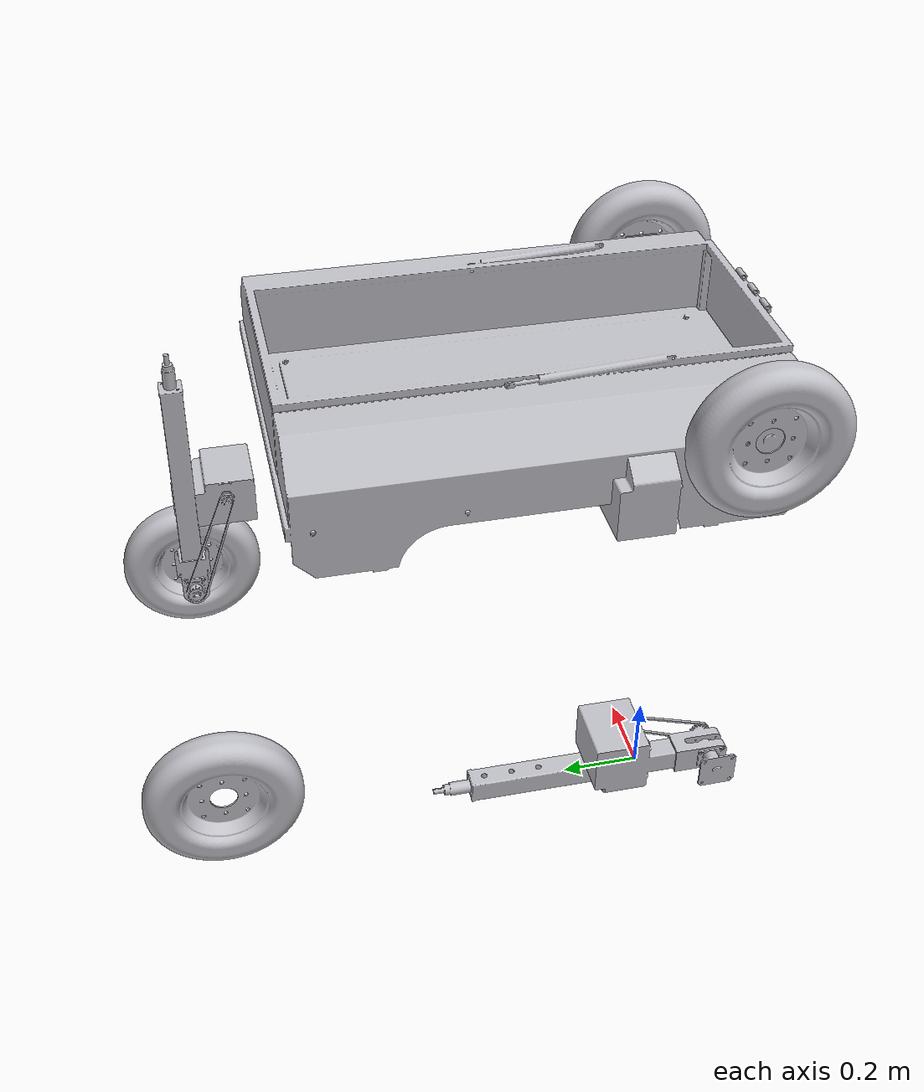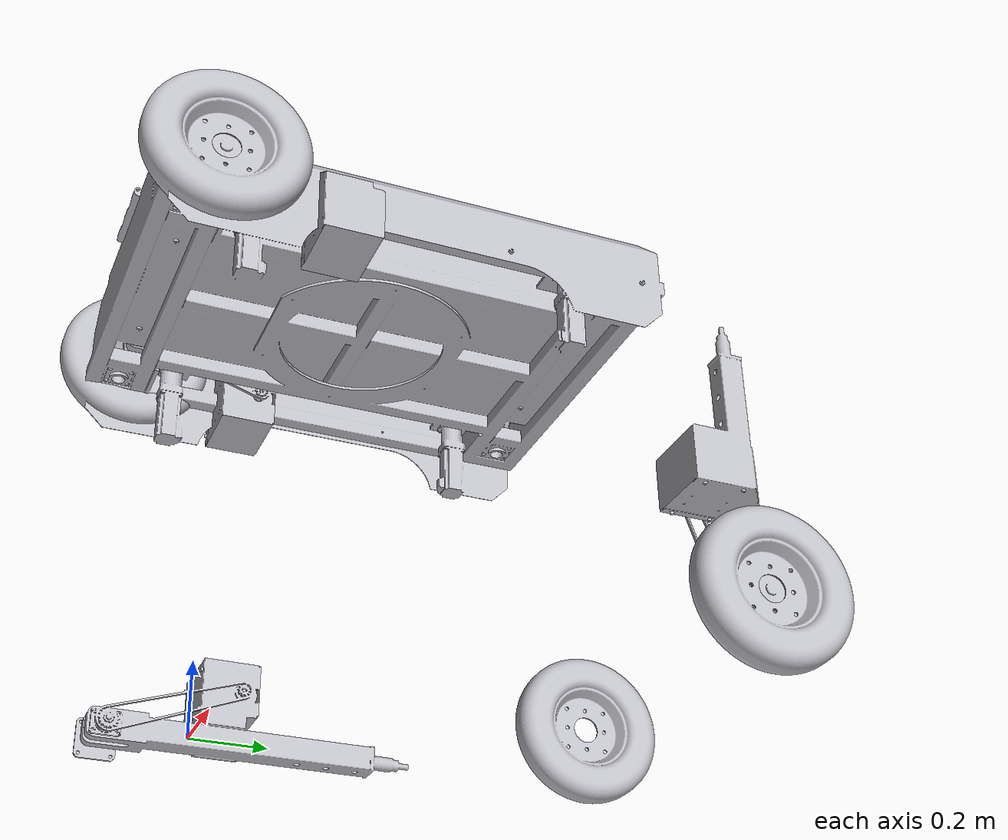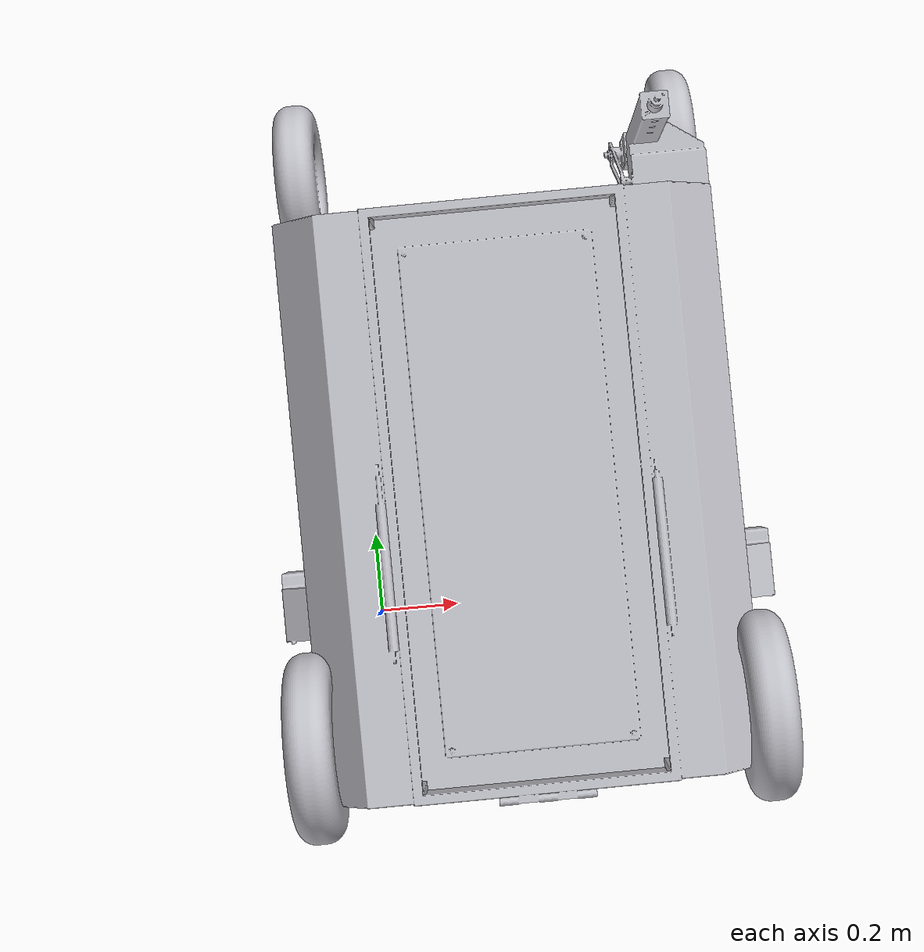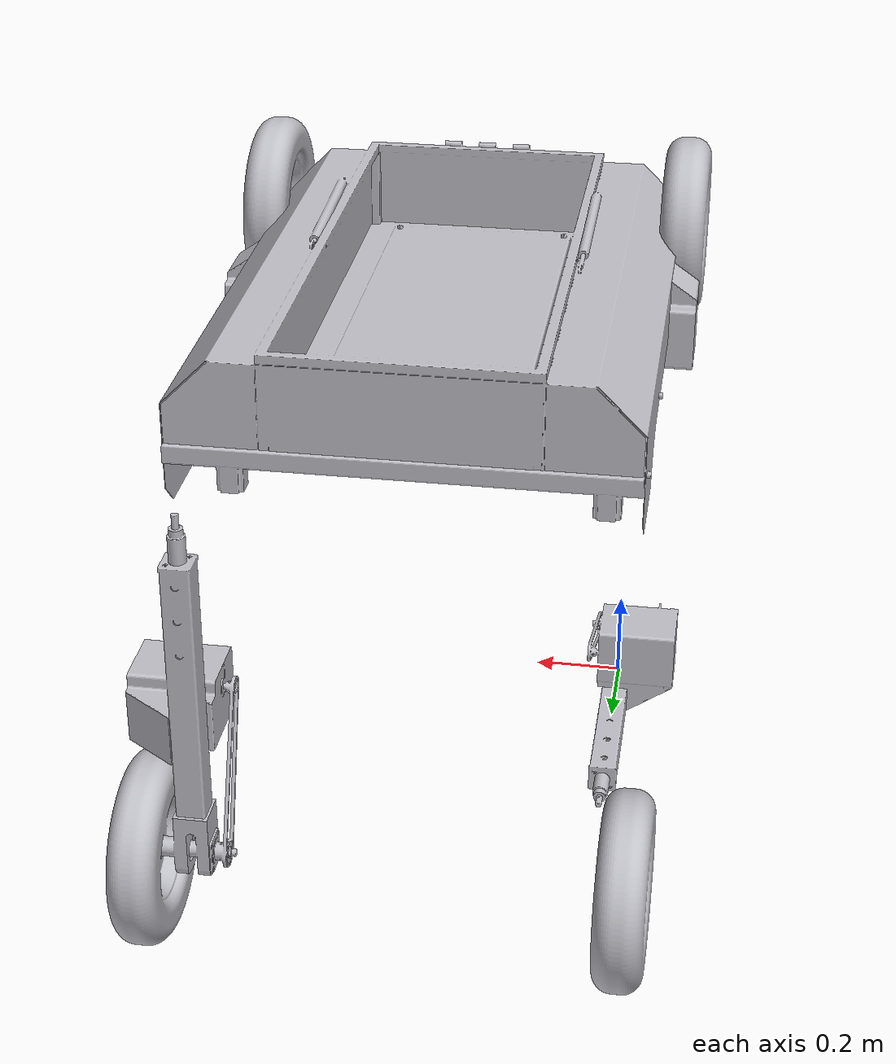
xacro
<?xml version="1.0" ?>
<robot name="Rice" xmlns:xacro="http://www.ros.org/wiki/xacro">

<xacro:include filename="$(find Rice_description)/urdf/materials.xacro" />
<xacro:include filename="$(find Rice_description)/urdf/Rice.ros2control" />
<xacro:include filename="$(find Rice_description)/urdf/Rice.gazebo" />
<link name="base_link">
  <inertial>
    <origin xyz="0.38402832945911597 0.5082275557152091 0.5479870886885508" rpy="0 0 0"/>
    <mass value="111.52248073403698"/>
    <inertia ixx="19.278738" iyy="29.802061" izz="11.892444" ixy="0.004947" iyz="-0.077376" ixz="-0.058745"/>
  </inertial>
  <visual>
    <origin xyz="0 0 0" rpy="0 0 0"/>
    <geometry>
      <mesh filename="file://$(find Rice_description)/meshes/base_link.stl" scale="0.001 0.001 0.001"/>
    </geometry>
    <material name="silver"/>
  </visual>
  <collision>
    <origin xyz="0 0 0" rpy="0 0 0"/>
    <geometry>
      <mesh filename="file://$(find Rice_description)/meshes/base_link.stl" scale="0.001 0.001 0.001"/>
    </geometry>
  </collision>
</link>

<link name="leg_br_1">
  <inertial>
    <origin xyz="0.02067495895251803 -0.42960566115027676 -0.059489197402857075" rpy="0 0 0"/>
    <mass value="19.428196282242897"/>
    <inertia ixx="0.69198" iyy="0.118365" izz="0.64895" ixy="-0.001759" iyz="0.04479" ixz="0.016967"/>
  </inertial>
  <visual>
    <origin xyz="-0.77 -0.465 -1.09" rpy="0 0 0"/>
    <geometry>
      <mesh filename="file://$(find Rice_description)/meshes/leg_br_1.stl" scale="0.001 0.001 0.001"/>
    </geometry>
    <material name="silver"/>
  </visual>
  <collision>
    <origin xyz="-0.77 -0.465 -1.09" rpy="0 0 0"/>
    <geometry>
      <mesh filename="file://$(find Rice_description)/meshes/leg_br_1.stl" scale="0.001 0.001 0.001"/>
    </geometry>
  </collision>
</link>

<link name="leg_bl_1">
  <inertial>
    <origin xyz="-0.020209424216131984 -0.4348060760743736 -0.05818411411396296" rpy="0 0 0"/>
    <mass value="19.9033372562808"/>
    <inertia ixx="0.720932" iyy="0.120784" izz="0.676639" ixy="0.003917" iyz="0.050773" ixz="-0.017565"/>
  </inertial>
  <visual>
    <origin xyz="-0.0 -0.465 -1.09" rpy="0 0 0"/>
    <geometry>
      <mesh filename="file://$(find Rice_description)/meshes/leg_bl_1.stl" scale="0.001 0.001 0.001"/>
    </geometry>
    <material name="silver"/>
  </visual>
  <collision>
    <origin xyz="-0.0 -0.465 -1.09" rpy="0 0 0"/>
    <geometry>
      <mesh filename="file://$(find Rice_description)/meshes/leg_bl_1.stl" scale="0.001 0.001 0.001"/>
    </geometry>
  </collision>
</link>

<link name="leg_fr_1">
  <inertial>
    <origin xyz="0.020209424438183965 -0.4348060753188833 0.058184114296319" rpy="0 0 0"/>
    <mass value="19.90333719348541"/>
    <inertia ixx="0.720932" iyy="0.120784" izz="0.676639" ixy="-0.003917" iyz="-0.050773" ixz="-0.017565"/>
  </inertial>
  <visual>
    <origin xyz="-0.77 -0.465 -0.0" rpy="0 0 0"/>
    <geometry>
      <mesh filename="file://$(find Rice_description)/meshes/leg_fr_1.stl" scale="0.001 0.001 0.001"/>
    </geometry>
    <material name="silver"/>
  </visual>
  <collision>
    <origin xyz="-0.77 -0.465 -0.0" rpy="0 0 0"/>
    <geometry>
      <mesh filename="file://$(find Rice_description)/meshes/leg_fr_1.stl" scale="0.001 0.001 0.001"/>
    </geometry>
  </collision>
</link>

<link name="leg_fl_1">
  <inertial>
    <origin xyz="-0.020233756052453953 -0.43473344154932647 0.05820262908150501" rpy="0 0 0"/>
    <mass value="19.897003188386865"/>
    <inertia ixx="0.72058" iyy="0.120724" izz="0.676271" ixy="0.003807" iyz="-0.050689" ixz="0.017537"/>
  </inertial>
  <visual>
    <origin xyz="-0.0 -0.465 -0.0" rpy="0 0 0"/>
    <geometry>
      <mesh filename="file://$(find Rice_description)/meshes/leg_fl_1.stl" scale="0.001 0.001 0.001"/>
    </geometry>
    <material name="silver"/>
  </visual>
  <collision>
    <origin xyz="-0.0 -0.465 -0.0" rpy="0 0 0"/>
    <geometry>
      <mesh filename="file://$(find Rice_description)/meshes/leg_fl_1.stl" scale="0.001 0.001 0.001"/>
    </geometry>
  </collision>
</link>

<link name="wheel_br_1">
  <inertial>
    <origin xyz="-0.0036583592135001064 -8.326672684688674e-17 -7.771561172376096e-15" rpy="0 0 0"/>
    <mass value="65.80472593736363"/>
    <inertia ixx="1.584128" iyy="0.836383" izz="0.836383" ixy="0.0" iyz="0.0" ixz="-0.0"/>
  </inertial>
  <visual>
    <origin xyz="-0.863 0.205 -1.09" rpy="0 0 0"/>
    <geometry>
      <mesh filename="file://$(find Rice_description)/meshes/wheel_br_1.stl" scale="0.001 0.001 0.001"/>
    </geometry>
    <material name="silver"/>
  </visual>
  <collision>
    <origin xyz="-0.863 0.205 -1.09" rpy="0 0 0"/>
    <geometry>
      <mesh filename="file://$(find Rice_description)/meshes/wheel_br_1.stl" scale="0.001 0.001 0.001"/>
    </geometry>
  </collision>
</link>

<link name="wheel_fr_1">
  <inertial>
    <origin xyz="-0.0036583592134961096 -8.326672684688674e-17 1.0372073678943815e-14" rpy="0 0 0"/>
    <mass value="65.80472593736363"/>
    <inertia ixx="1.584128" iyy="0.836383" izz="0.836383" ixy="0.0" iyz="-0.0" ixz="0.0"/>
  </inertial>
  <visual>
    <origin xyz="-0.863 0.205 -0.0" rpy="0 0 0"/>
    <geometry>
      <mesh filename="file://$(find Rice_description)/meshes/wheel_fr_1.stl" scale="0.001 0.001 0.001"/>
    </geometry>
    <material name="silver"/>
  </visual>
  <collision>
    <origin xyz="-0.863 0.205 -0.0" rpy="0 0 0"/>
    <geometry>
      <mesh filename="file://$(find Rice_description)/meshes/wheel_fr_1.stl" scale="0.001 0.001 0.001"/>
    </geometry>
  </collision>
</link>

<link name="wheel_bl_1">
  <inertial>
    <origin xyz="0.0020000000000000018 -8.326672684688674e-17 -7.771561172376096e-15" rpy="0 0 0"/>
    <mass value="65.80472593736363"/>
    <inertia ixx="1.584128" iyy="0.836383" izz="0.836383" ixy="0.0" iyz="0.0" ixz="0.0"/>
  </inertial>
  <visual>
    <origin xyz="0.093 0.205 -1.09" rpy="0 0 0"/>
    <geometry>
      <mesh filename="file://$(find Rice_description)/meshes/wheel_bl_1.stl" scale="0.001 0.001 0.001"/>
    </geometry>
    <material name="silver"/>
  </visual>
  <collision>
    <origin xyz="0.093 0.205 -1.09" rpy="0 0 0"/>
    <geometry>
      <mesh filename="file://$(find Rice_description)/meshes/wheel_bl_1.stl" scale="0.001 0.001 0.001"/>
    </geometry>
  </collision>
</link>

<link name="wheel_fl_1">
  <inertial>
    <origin xyz="0.002000000000003818 -8.326672684688674e-17 4.429351555892799e-15" rpy="0 0 0"/>
    <mass value="65.80472593736363"/>
    <inertia ixx="1.584128" iyy="0.836383" izz="0.836383" ixy="0.0" iyz="-0.0" ixz="-0.0"/>
  </inertial>
  <visual>
    <origin xyz="0.093 0.205 0.0" rpy="0 0 0"/>
    <geometry>
      <mesh filename="file://$(find Rice_description)/meshes/wheel_fl_1.stl" scale="0.001 0.001 0.001"/>
    </geometry>
    <material name="silver"/>
  </visual>
  <collision>
    <origin xyz="0.093 0.205 0.0" rpy="0 0 0"/>
    <geometry>
      <mesh filename="file://$(find Rice_description)/meshes/wheel_fl_1.stl" scale="0.001 0.001 0.001"/>
    </geometry>
  </collision>
</link>

<joint name="Revolute 9" type="continuous">
  <origin xyz="0.77 0.465 1.09" rpy="0 0 0"/>
  <parent link="base_link"/>
  <child link="leg_br_1"/>
  <axis xyz="0.0 -1.0 0.0"/>
</joint>

<joint name="Revolute 10" type="continuous">
  <origin xyz="0.0 0.465 1.09" rpy="0 0 0"/>
  <parent link="base_link"/>
  <child link="leg_bl_1"/>
  <axis xyz="0.0 -1.0 0.0"/>
</joint>

<joint name="Revolute 11" type="continuous">
  <origin xyz="0.77 0.465 0.0" rpy="0 0 0"/>
  <parent link="base_link"/>
  <child link="leg_fr_1"/>
  <axis xyz="0.0 -1.0 0.0"/>
</joint>

<joint name="Revolute 12" type="continuous">
  <origin xyz="0.0 0.465 0.0" rpy="0 0 0"/>
  <parent link="base_link"/>
  <child link="leg_fl_1"/>
  <axis xyz="0.0 -1.0 0.0"/>
</joint>

<joint name="Revolute 13" type="continuous">
  <origin xyz="0.093 -0.67 0.0" rpy="0 0 0"/>
  <parent link="leg_br_1"/>
  <child link="wheel_br_1"/>
  <axis xyz="1.0 0.0 0.0"/>
</joint>

<joint name="Revolute 14" type="continuous">
  <origin xyz="0.093 -0.67 0.0" rpy="0 0 0"/>
  <parent link="leg_fr_1"/>
  <child link="wheel_fr_1"/>
  <axis xyz="1.0 0.0 0.0"/>
</joint>

<joint name="Revolute 15" type="continuous">
  <origin xyz="-0.093 -0.67 0.0" rpy="0 0 0"/>
  <parent link="leg_bl_1"/>
  <child link="wheel_bl_1"/>
  <axis xyz="-1.0 0.0 0.0"/>
</joint>

<joint name="Revolute 16" type="continuous">
  <origin xyz="-0.093 -0.67 -0.0" rpy="0 0 0"/>
  <parent link="leg_fl_1"/>
  <child link="wheel_fl_1"/>
  <axis xyz="-1.0 0.0 0.0"/>
</joint>

</robot>

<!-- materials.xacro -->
<robot name="Rice" xmlns:xacro="http://www.ros.org/wiki/xacro" >

<material name="Rice_silver">
  <color rgba="0.700 0.700 0.700 1.000"/>
</material>

</robot>

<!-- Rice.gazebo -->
<robot name="Rice" xmlns:xacro="http://www.ros.org/wiki/xacro" >

<xacro:property name="body_color" value="Gazebo/Silver" />

<gazebo>
  <plugin name="control" filename="libgazebo_ros_control.so"/>
</gazebo>
<gazebo reference="base_link">
  <material>${body_color}</material>
  <mu1>0.2</mu1>
  <mu2>0.2</mu2>
  <self_collide>true</self_collide>
  <gravity>true</gravity>
</gazebo>

<gazebo reference="leg_br">
  <material>${body_color}</material>
  <mu1>0.2</mu1>
  <mu2>0.2</mu2>
  <self_collide>true</self_collide>
</gazebo>

<gazebo reference="leg_bl">
  <material>${body_color}</material>
  <mu1>0.2</mu1>
  <mu2>0.2</mu2>
  <self_collide>true</self_collide>
</gazebo>

<gazebo reference="leg_fr">
  <material>${body_color}</material>
  <mu1>0.2</mu1>
  <mu2>0.2</mu2>
  <self_collide>true</self_collide>
</gazebo>

<gazebo reference="leg_fl">
  <material>${body_color}</material>
  <mu1>0.2</mu1>
  <mu2>0.2</mu2>
  <self_collide>true</self_collide>
</gazebo>

<gazebo reference="wheel_br">
  <material>${body_color}</material>
  <mu1>0.2</mu1>
  <mu2>0.2</mu2>
  <self_collide>true</self_collide>
</gazebo>

<gazebo reference="wheel_fr">
  <material>${body_color}</material>
  <mu1>0.2</mu1>
  <mu2>0.2</mu2>
  <self_collide>true</self_collide>
</gazebo>

<gazebo reference="wheel_bl">
  <material>${body_color}</material>
  <mu1>0.2</mu1>
  <mu2>0.2</mu2>
  <self_collide>true</self_collide>
</gazebo>

<gazebo reference="wheel_fl">
  <material>${body_color}</material>
  <mu1>0.2</mu1>
  <mu2>0.2</mu2>
  <self_collide>true</self_collide>
</gazebo>

</robot>
